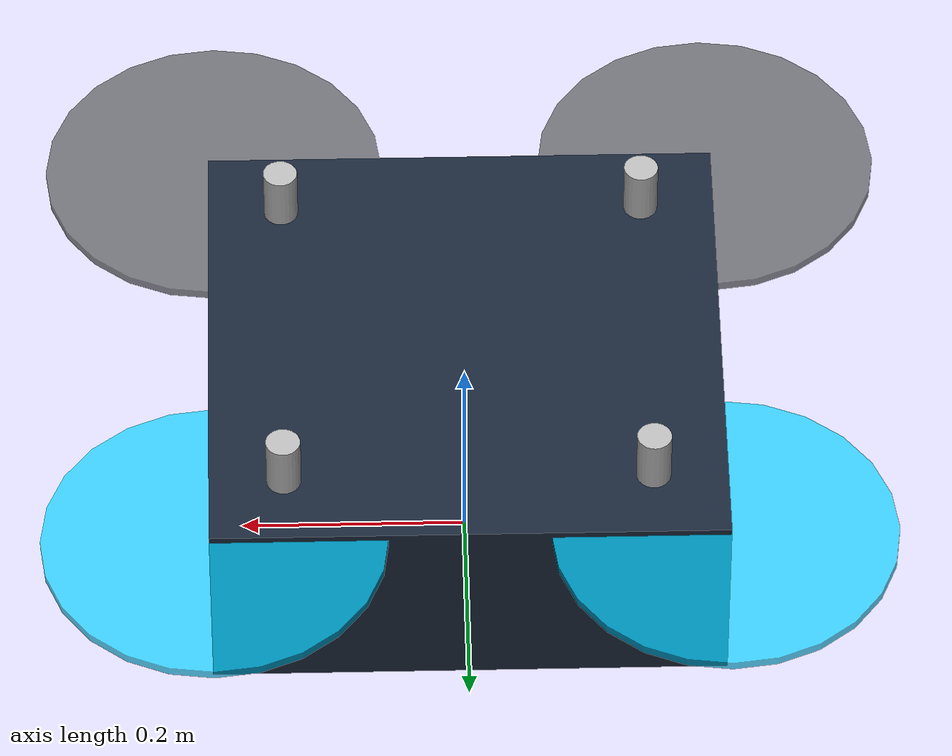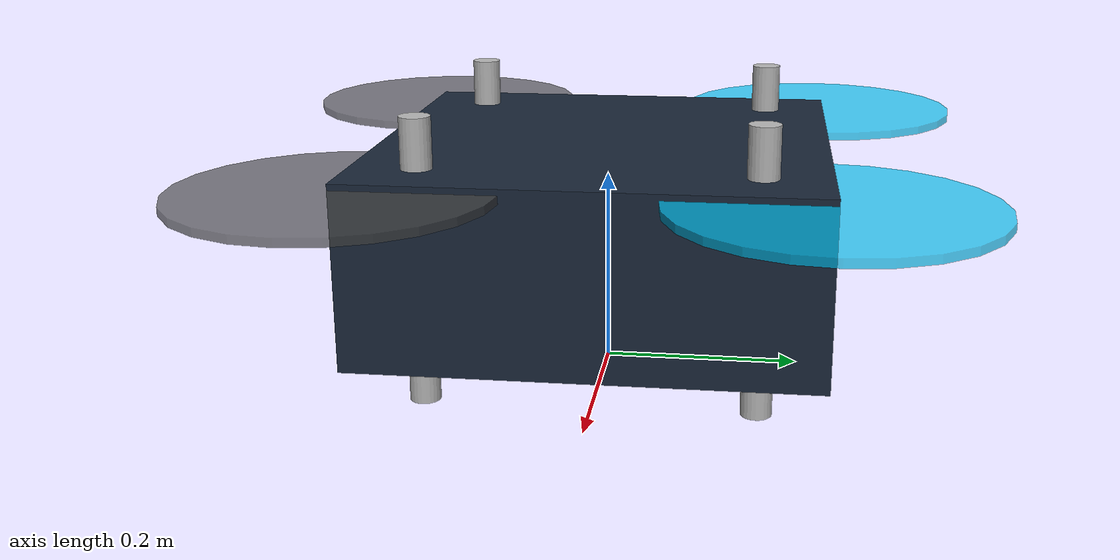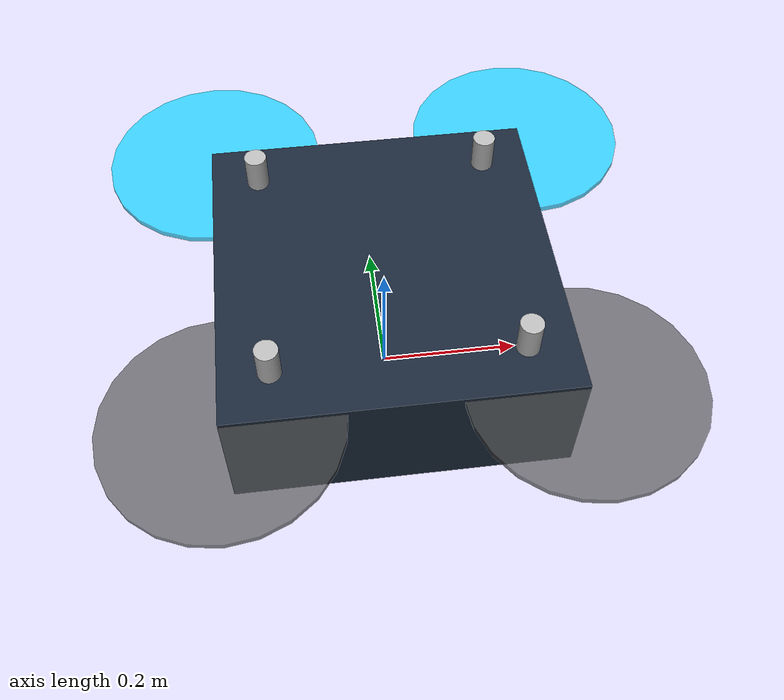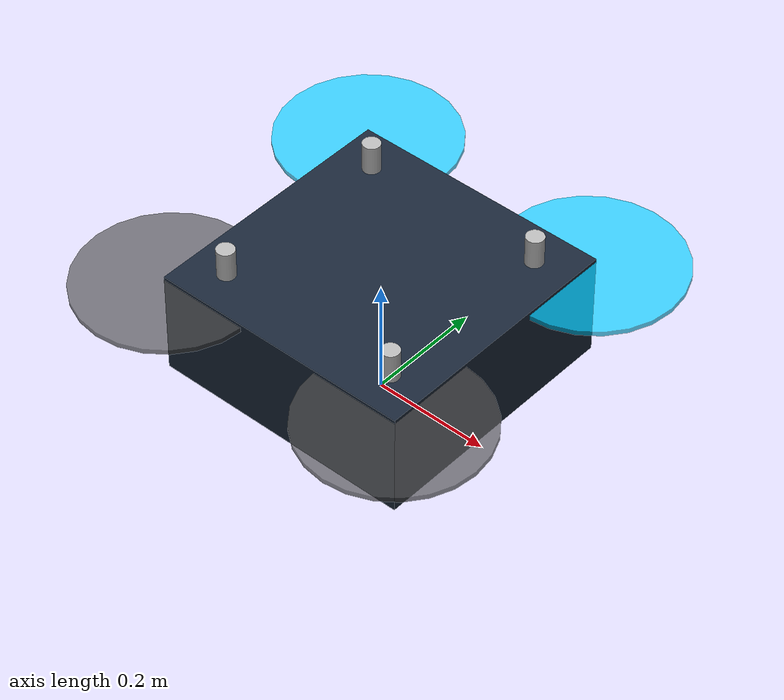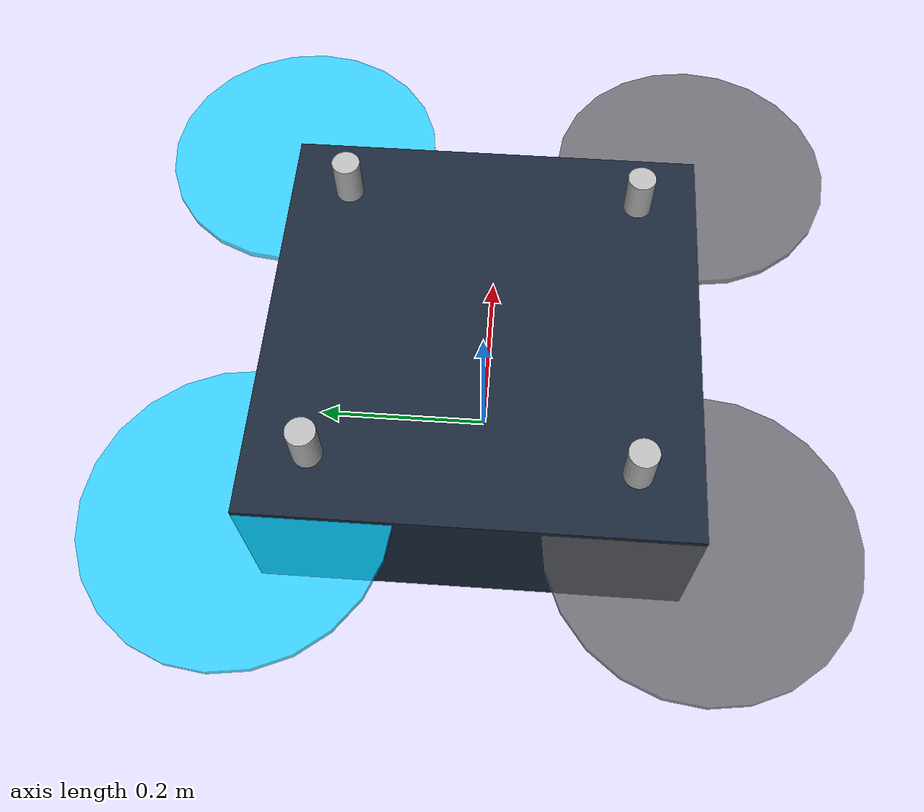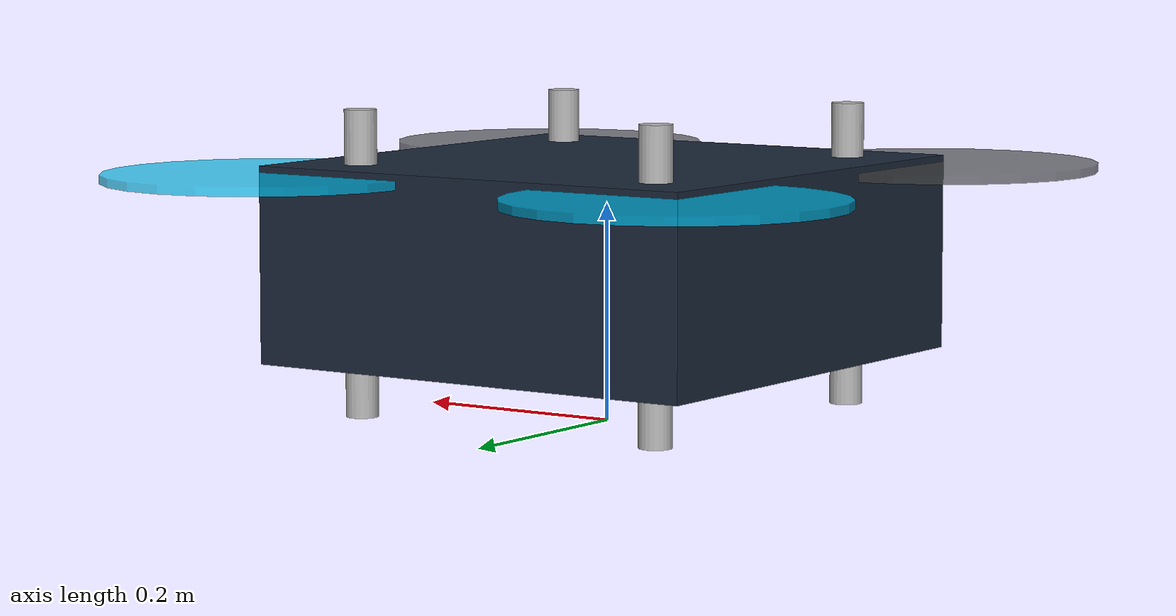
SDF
<?xml version="1.0" ?>
<sdf version="1.8">
  <model name="skynav_quad">
    <pose>0 0 0.15 0 0 0</pose>
    <static>false</static>

    <!-- Main Airframe Fuselage Link -->
    <link name="base_link">
      <inertial>
        <mass>2.45</mass>
        <inertia>
          <ixx>0.0347563</ixx>
          <ixy>0</ixy>
          <ixz>0</ixz>
          <iyy>0.0458929</iyy>
          <iyz>0</iyz>
          <izz>0.05887</izz>
        </inertia>
      </inertial>

      <collision name="fuselage_col">
        <geometry>
          <box>
            <size>0.45 0.45 0.18</size>
          </box>
        </geometry>
      </collision>

      <visual name="fuselage_vis">
        <geometry>
          <box>
            <size>0.45 0.45 0.18</size>
          </box>
        </geometry>
        <material>
          <ambient>0.05 0.08 0.12 1.0</ambient>
          <diffuse>0.1 0.15 0.22 1.0</diffuse>
        </material>
      </visual>

      <!-- Carbon Fiber Arm Visuals -->
      <visual name="arm_front_right">
        <pose>0.16 0.16 0 0 0 0.785</pose>
        <geometry>
          <cylinder>
            <radius>0.015</radius>
            <length>0.28</length>
          </cylinder>
        </geometry>
      </visual>

      <visual name="arm_front_left">
        <pose>-0.16 0.16 0 0 0 -0.785</pose>
        <geometry>
          <cylinder>
            <radius>0.015</radius>
            <length>0.28</length>
          </cylinder>
        </geometry>
      </visual>

      <visual name="arm_back_left">
        <pose>-0.16 -0.16 0 0 0 0.785</pose>
        <geometry>
          <cylinder>
            <radius>0.015</radius>
            <length>0.28</length>
          </cylinder>
        </geometry>
      </visual>

      <visual name="arm_back_right">
        <pose>0.16 -0.16 0 0 0 -0.785</pose>
        <geometry>
          <cylinder>
            <radius>0.015</radius>
            <length>0.28</length>
          </cylinder>
        </geometry>
      </visual>

      <!-- Sensor: 6-Axis IMU Sensor -->
      <sensor name="imu_sensor" type="imu">
        <always_on>1</always_on>
        <update_rate>250</update_rate>
        <topic>/skynav/sensors/imu</topic>
        <imu>
          <angular_velocity>
            <x><noise type="gaussian"><mean>0.0</mean><stddev>0.0002</stddev></noise></x>
            <y><noise type="gaussian"><mean>0.0</mean><stddev>0.0002</stddev></noise></y>
            <z><noise type="gaussian"><mean>0.0</mean><stddev>0.0002</stddev></noise></z>
          </angular_velocity>
          <linear_acceleration>
            <x><noise type="gaussian"><mean>0.0</mean><stddev>0.017</stddev></noise></x>
            <y><noise type="gaussian"><mean>0.0</mean><stddev>0.017</stddev></noise></y>
            <z><noise type="gaussian"><mean>0.0</mean><stddev>0.017</stddev></noise></z>
          </linear_acceleration>
        </imu>
      </sensor>

      <!-- Sensor: Navigational RTK-GPS Sensor -->
      <sensor name="nav_gps" type="navsat">
        <always_on>1</always_on>
        <update_rate>10</update_rate>
        <topic>/skynav/sensors/gps</topic>
      </sensor>

      <!-- Sensor: Downward LiDAR Altimeter (0 - 50m AGL for landing) -->
      <sensor name="downward_lidar" type="altimeter">
        <always_on>1</always_on>
        <update_rate>50</update_rate>
        <topic>/skynav/sensors/lidar_alt</topic>
        <altimeter>
          <vertical_position>
            <noise type="gaussian"><mean>0.0</mean><stddev>0.01</stddev></noise>
          </vertical_position>
          <vertical_velocity>
            <noise type="gaussian"><mean>0.0</mean><stddev>0.01</stddev></noise>
          </vertical_velocity>
        </altimeter>
      </sensor>

      <!-- Sensor: Forward Horizontal Obstacle LiDAR (20Hz, 90 deg FOV, 60m range) -->
      <sensor name="forward_obstacle_lidar" type="gpu_lidar">
        <pose>0.18 0 0.05 0 0 0</pose>
        <always_on>1</always_on>
        <update_rate>20</update_rate>
        <ray>
          <scan>
            <horizontal>
              <samples>180</samples>
              <resolution>1</resolution>
              <min_angle>-0.785398</min_angle>
              <max_angle>0.785398</max_angle>
            </horizontal>
          </scan>
          <range>
            <min>0.2</min>
            <max>60.0</max>
            <resolution>0.05</resolution>
          </range>
        </ray>
        <topic>/skynav/sensors/lidar_obstacle</topic>
      </sensor>
    </link>

    <!-- Rotor 1 (Front Right - CCW) -->
    <link name="rotor_0">
      <pose>0.22 0.22 0.08 0 0 0</pose>
      <inertial>
        <mass>0.025</mass>
        <inertia><ixx>9.75e-06</ixx><iyy>0.0001667</iyy><izz>0.000176</izz></inertia>
      </inertial>
      <visual name="rotor_0_vis">
        <geometry><cylinder><radius>0.15</radius><length>0.008</length></cylinder></geometry>
        <material><ambient>0 0.8 1 0.7</ambient><diffuse>0 0.8 1 0.7</diffuse></material>
      </visual>
    </link>
    <joint name="rotor_0_joint" type="revolute">
      <parent>base_link</parent>
      <child>rotor_0</child>
      <axis><xyz>0 0 1</xyz></axis>
    </joint>

    <!-- Rotor 2 (Front Left - CW) -->
    <link name="rotor_1">
      <pose>-0.22 0.22 0.08 0 0 0</pose>
      <inertial>
        <mass>0.025</mass>
        <inertia><ixx>9.75e-06</ixx><iyy>0.0001667</iyy><izz>0.000176</izz></inertia>
      </inertial>
      <visual name="rotor_1_vis">
        <geometry><cylinder><radius>0.15</radius><length>0.008</length></cylinder></geometry>
        <material><ambient>0 0.8 1 0.7</ambient><diffuse>0 0.8 1 0.7</diffuse></material>
      </visual>
    </link>
    <joint name="rotor_1_joint" type="revolute">
      <parent>base_link</parent>
      <child>rotor_1</child>
      <axis><xyz>0 0 1</xyz></axis>
    </joint>

    <!-- Rotor 3 (Back Left - CCW) -->
    <link name="rotor_2">
      <pose>-0.22 -0.22 0.08 0 0 0</pose>
      <inertial>
        <mass>0.025</mass>
        <inertia><ixx>9.75e-06</ixx><iyy>0.0001667</iyy><izz>0.000176</izz></inertia>
      </inertial>
      <visual name="rotor_2_vis">
        <geometry><cylinder><radius>0.15</radius><length>0.008</length></cylinder></geometry>
        <material><ambient>0.2 0.2 0.2 0.7</ambient><diffuse>0.3 0.3 0.3 0.7</diffuse></material>
      </visual>
    </link>
    <joint name="rotor_2_joint" type="revolute">
      <parent>base_link</parent>
      <child>rotor_2</child>
      <axis><xyz>0 0 1</xyz></axis>
    </joint>

    <!-- Rotor 4 (Back Right - CW) -->
    <link name="rotor_3">
      <pose>0.22 -0.22 0.08 0 0 0</pose>
      <inertial>
        <mass>0.025</mass>
        <inertia><ixx>9.75e-06</ixx><iyy>0.0001667</iyy><izz>0.000176</izz></inertia>
      </inertial>
      <visual name="rotor_3_vis">
        <geometry><cylinder><radius>0.15</radius><length>0.008</length></cylinder></geometry>
        <material><ambient>0.2 0.2 0.2 0.7</ambient><diffuse>0.3 0.3 0.3 0.7</diffuse></material>
      </visual>
    </link>
    <joint name="rotor_3_joint" type="revolute">
      <parent>base_link</parent>
      <child>rotor_3</child>
      <axis><xyz>0 0 1</xyz></axis>
    </joint>

    <!-- Multicopter Motor Dynamics Plugins (4 Rotors) -->
    <plugin filename="gz-sim-multicopter-motor-model-system" name="gz::sim::systems::MulticopterMotorModel">
      <robotNamespace>/skynav</robotNamespace>
      <jointName>rotor_0_joint</jointName>
      <linkName>rotor_0</linkName>
      <turningDirection>ccw</turningDirection>
      <actuator_number>0</actuator_number>
      <motorConstant>8.54858e-06</motorConstant>
      <momentConstant>0.06</momentConstant>
      <maxRotVelocity>1100</maxRotVelocity>
      <rotorDragCoefficient>8.06428e-05</rotorDragCoefficient>
      <rollingMomentCoefficient>1e-06</rollingMomentCoefficient>
      <rotorVelocitySlowdownSim>10</rotorVelocitySlowdownSim>
      <motorType>velocity</motorType>
    </plugin>

    <plugin filename="gz-sim-multicopter-motor-model-system" name="gz::sim::systems::MulticopterMotorModel">
      <robotNamespace>/skynav</robotNamespace>
      <jointName>rotor_1_joint</jointName>
      <linkName>rotor_1</linkName>
      <turningDirection>cw</turningDirection>
      <actuator_number>1</actuator_number>
      <motorConstant>8.54858e-06</motorConstant>
      <momentConstant>0.06</momentConstant>
      <maxRotVelocity>1100</maxRotVelocity>
      <rotorDragCoefficient>8.06428e-05</rotorDragCoefficient>
      <rollingMomentCoefficient>1e-06</rollingMomentCoefficient>
      <rotorVelocitySlowdownSim>10</rotorVelocitySlowdownSim>
      <motorType>velocity</motorType>
    </plugin>

    <plugin filename="gz-sim-multicopter-motor-model-system" name="gz::sim::systems::MulticopterMotorModel">
      <robotNamespace>/skynav</robotNamespace>
      <jointName>rotor_2_joint</jointName>
      <linkName>rotor_2</linkName>
      <turningDirection>ccw</turningDirection>
      <actuator_number>2</actuator_number>
      <motorConstant>8.54858e-06</motorConstant>
      <momentConstant>0.06</momentConstant>
      <maxRotVelocity>1100</maxRotVelocity>
      <rotorDragCoefficient>8.06428e-05</rotorDragCoefficient>
      <rollingMomentCoefficient>1e-06</rollingMomentCoefficient>
      <rotorVelocitySlowdownSim>10</rotorVelocitySlowdownSim>
      <motorType>velocity</motorType>
    </plugin>

    <plugin filename="gz-sim-multicopter-motor-model-system" name="gz::sim::systems::MulticopterMotorModel">
      <robotNamespace>/skynav</robotNamespace>
      <jointName>rotor_3_joint</jointName>
      <linkName>rotor_3</linkName>
      <turningDirection>cw</turningDirection>
      <actuator_number>3</actuator_number>
      <motorConstant>8.54858e-06</motorConstant>
      <momentConstant>0.06</momentConstant>
      <maxRotVelocity>1100</maxRotVelocity>
      <rotorDragCoefficient>8.06428e-05</rotorDragCoefficient>
      <rollingMomentCoefficient>1e-06</rollingMomentCoefficient>
      <rotorVelocitySlowdownSim>10</rotorVelocitySlowdownSim>
      <motorType>velocity</motorType>
    </plugin>

    <!-- Odometry Publisher Plugin -->
    <plugin
      filename="gz-sim-odometry-publisher-system"
      name="gz::sim::systems::OdometryPublisher">
      <dimensions>3</dimensions>
      <odom_frame>odom</odom_frame>
      <robot_base_frame>skynav_quad/base_link</robot_base_frame>
      <odom_topic>/skynav/odometry</odom_topic>
    </plugin>

    <!-- Multicopter Flight Dynamics Velocity Control Plugin -->
    <plugin
      filename="gz-sim-multicopter-control-system"
      name="gz::sim::systems::MulticopterVelocityControl">
      <robotNamespace>skynav</robotNamespace>
      <commandSubTopic>cmd_vel</commandSubTopic>
      <enableSubTopic>enable</enableSubTopic>
      <comLinkName>base_link</comLinkName>
      <velocityGain>2.7 2.7 2.7</velocityGain>
      <attitudeGain>2.0 2.0 2.0</attitudeGain>
      <angularRateGain>0.4 0.4 0.4</angularRateGain>
      <maximumLinearAcceleration>3.0 3.0 3.0</maximumLinearAcceleration>
      <rotorConfiguration>
        <rotor>
          <jointName>rotor_0_joint</jointName>
          <forceConstant>8.54858e-06</forceConstant>
          <momentConstant>0.06</momentConstant>
          <direction>1</direction>
        </rotor>
        <rotor>
          <jointName>rotor_1_joint</jointName>
          <forceConstant>8.54858e-06</forceConstant>
          <momentConstant>0.06</momentConstant>
          <direction>-1</direction>
        </rotor>
        <rotor>
          <jointName>rotor_2_joint</jointName>
          <forceConstant>8.54858e-06</forceConstant>
          <momentConstant>0.06</momentConstant>
          <direction>1</direction>
        </rotor>
        <rotor>
          <jointName>rotor_3_joint</jointName>
          <forceConstant>8.54858e-06</forceConstant>
          <momentConstant>0.06</momentConstant>
          <direction>-1</direction>
        </rotor>
      </rotorConfiguration>
    </plugin>

  </model>
</sdf>
